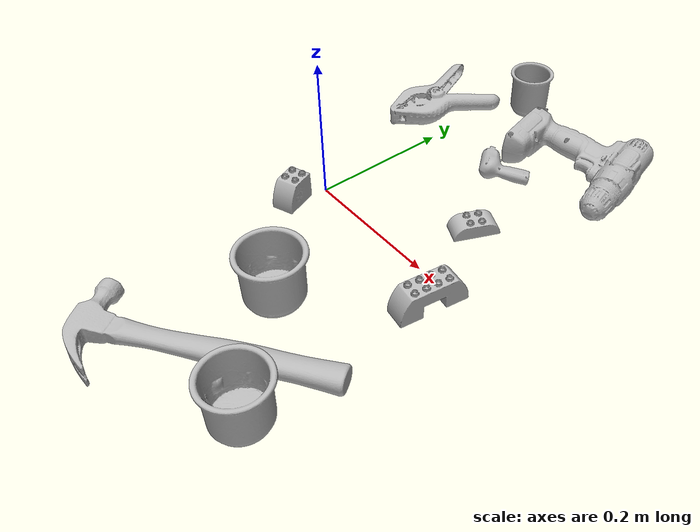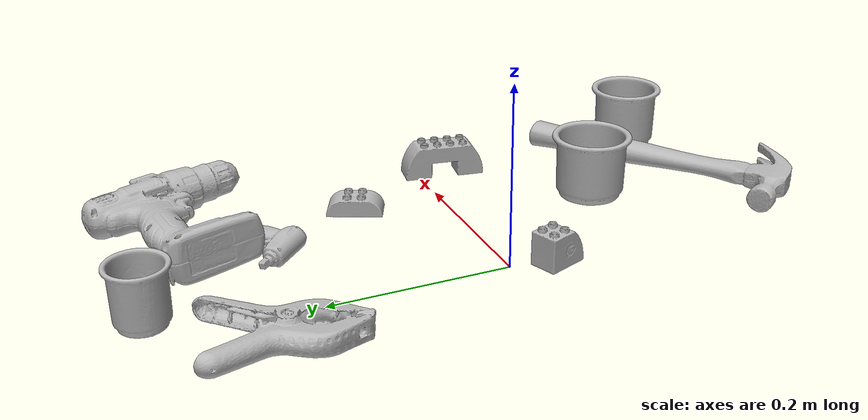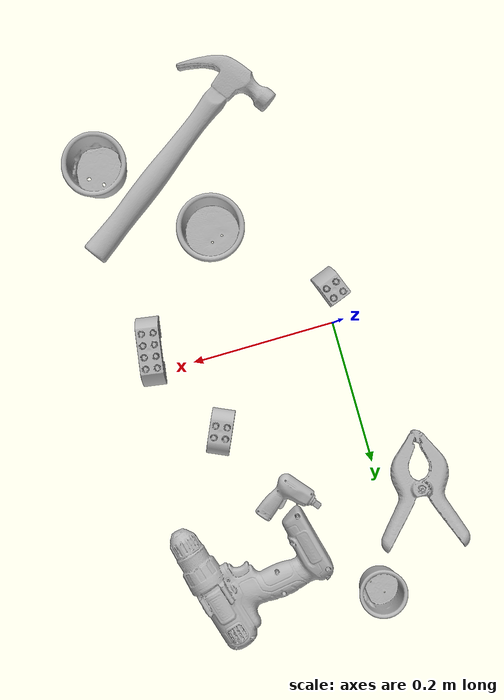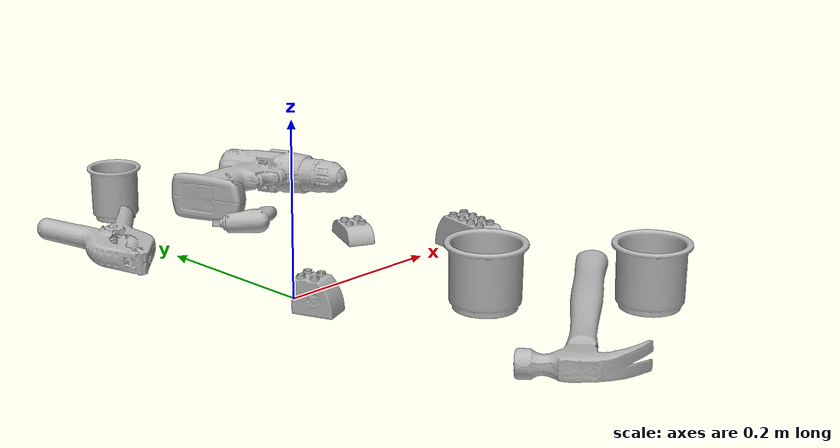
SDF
<sdf version="1.4">
  <world name="default">
    <light name="light1" type="point">
      <pose>0 0 1 0 0 0</pose>
      <diffuse>3 3 3 1</diffuse>
      <specular>3 3 3 1</specular>
    </light>
    <light name="light2" type="point">
      <pose>0 0.5 2 0 0 0</pose>
      <diffuse>1 1 1 1</diffuse>
      <specular>1 1 1 1</specular>
    </light>
    <light name="light3" type="point">
      <pose>0 0.5 2 0 0 0</pose>
      <diffuse>3 3 3 1</diffuse>
      <specular>3 3 3 1</specular>
    </light>
    <scene>
      <ambient>0.7 0.7 0.7</ambient>
    </scene>
    <model name="cup1">
      <link name="link_cup1">
        <collision name="default">
          <geometry>
            <mesh>
              <uri>model://g_cups/collision_meshes/collision.obj</uri>
              <scale>1.0 1.0 1.0</scale>
            </mesh>
          </geometry>
          <surface>
            <friction>
              <ode>
                <mu>0.5</mu>
                <mu2>0.5</mu2>
              </ode>
            </friction>
          <contact>
        <ode>
            <max_vel>0</max_vel>
            <min_depth>0.0001</min_depth>
            <kp>1e8</kp>
        </ode>
    </contact></surface>
        </collision>
        <visual name="default">
          <geometry>
            <mesh>
              <uri>model://g_cups/visual_meshes/visual.dae</uri>
              <scale>1.0 1.0 1.0</scale>
            </mesh>
          </geometry>
        </visual>
        <inertial>
          <mass>0.057625629007816315</mass>
          <pose>-0.0007946282275952399 -4.206500670989044e-05 -0.0021329375449568033 -0.21382697289054745 -0.3141031271963666 0.3112149002706268</pose>
          <inertia>
            <ixx>6.726202e-05</ixx>
            <iyy>6.7033216e-05</iyy>
            <izz>6.967186e-05</izz>
            <ixy>0</ixy>
            <ixz>0</ixz>
            <iyz>0</iyz>
          </inertia>
        </inertial>
      </link>
      <pose>0.251207560300827 -0.28950297832489014 0.037202946841716766 -4.177848536602637e-06 -3.5061021098737193e-05 2.3903385218371875</pose>
    </model>
    <model name="cup2">
      <link name="link_cup2">
        <collision name="default">
          <geometry>
            <mesh>
              <uri>model://c_cups/collision_meshes/collision.obj</uri>
              <scale>1.0 1.0 1.0</scale>
            </mesh>
          </geometry>
          <surface>
            <friction>
              <ode>
                <mu>0.5</mu>
                <mu2>0.5</mu2>
              </ode>
            </friction>
          <contact>
        <ode>
            <max_vel>0</max_vel>
            <min_depth>0.0001</min_depth>
            <kp>1e8</kp>
        </ode>
    </contact></surface>
        </collision>
        <visual name="default">
          <geometry>
            <mesh>
              <uri>model://c_cups/visual_meshes/visual.dae</uri>
              <scale>1.0 1.0 1.0</scale>
            </mesh>
          </geometry>
        </visual>
        <inertial>
          <mass>0.03477548435330391</mass>
          <pose>0.0007237261161208153 0.0020153902005404234 -0.0012750983005389571 0.30215732346046187 0.013461711857135551 -0.08771879968331305</pose>
          <inertia>
            <ixx>2.5862058e-05</ixx>
            <iyy>2.540504e-05</iyy>
            <izz>2.2871589e-05</izz>
            <ixy>0</ixy>
            <ixz>0</ixz>
            <iyz>0</iyz>
          </inertia>
        </inertial>
      </link>
      <pose>0.03809884190559387 0.36714187264442444 0.03345870599150658 7.68400319434381e-06 9.623430475637278e-06 -1.4910746635321357</pose>
    </model>
    <model name="cup3">
      <link name="link_cup3">
        <collision name="default">
          <geometry>
            <mesh>
              <uri>model://h_cups/collision_meshes/collision.obj</uri>
              <scale>1.0 1.0 1.0</scale>
            </mesh>
          </geometry>
          <surface>
            <friction>
              <ode>
                <mu>0.5</mu>
                <mu2>0.5</mu2>
              </ode>
            </friction>
          <contact>
        <ode>
            <max_vel>0</max_vel>
            <min_depth>0.0001</min_depth>
            <kp>1e8</kp>
        </ode>
    </contact></surface>
        </collision>
        <visual name="default">
          <geometry>
            <mesh>
              <uri>model://h_cups/visual_meshes/visual.dae</uri>
              <scale>1.0 1.0 1.0</scale>
            </mesh>
          </geometry>
        </visual>
        <inertial>
          <mass>0.050017159432172775</mass>
          <pose>-2.702731035242323e-05 0.0002301866770721972 -0.0018405388109385967 -0.024362003715272553 0.06545245272055236 0.12885201823743497</pose>
          <inertia>
            <ixx>6.459484e-05</ixx>
            <iyy>6.382401e-05</iyy>
            <izz>6.774227e-05</izz>
            <ixy>0</ixy>
            <ixz>0</ixz>
            <iyz>0</iyz>
          </inertia>
        </inertial>
      </link>
      <pose>0.12537412345409393 -0.16605649888515472 0.03775801509618759 -1.9020838873905425e-08 3.731041008386246e-08 -1.3006312731026173</pose>
    </model>
    <model name="toy1">
      <link name="link_toy1">
        <collision name="default">
          <geometry>
            <mesh>
              <uri>model://e_lego_duplo/collision_meshes/collision.obj</uri>
              <scale>1.0 1.0 1.0</scale>
            </mesh>
          </geometry>
          <surface>
            <friction>
              <ode>
                <mu>0.5</mu>
                <mu2>0.5</mu2>
              </ode>
            </friction>
          <contact>
        <ode>
            <max_vel>0</max_vel>
            <min_depth>0.0001</min_depth>
            <kp>1e8</kp>
        </ode>
    </contact></surface>
        </collision>
        <visual name="default">
          <geometry>
            <mesh>
              <uri>model://e_lego_duplo/visual_meshes/visual.dae</uri>
              <scale>1.0 1.0 1.0</scale>
            </mesh>
          </geometry>
        </visual>
        <inertial>
          <mass>0.09100330621004105</mass>
          <pose>0.0003256048948969692 0.00023485418932978064 0.0019521461799740791 -0.02256778535698338 -6.825395529084007e-05 -0.0076251622764869605</pose>
          <inertia>
            <ixx>1.897719e-05</ixx>
            <iyy>7.788726e-05</iyy>
            <izz>7.584653e-05</izz>
            <ixy>0</ixy>
            <ixz>0</ixz>
            <iyz>0</iyz>
          </inertia>
        </inertial>
      </link>
      <pose>0.2521771192550659 -0.03138403594493866 0.021808993071317673 9.510947705945546e-07 -4.272283320270933e-07 1.4214744698633952</pose>
    </model>
    <model name="toy2">
      <link name="link_toy2">
        <collision name="default">
          <geometry>
            <mesh>
              <uri>model://b_toy_airplane/collision_meshes/collision.obj</uri>
              <scale>0.5 0.5 0.5</scale>
            </mesh>
          </geometry>
          <surface>
            <friction>
              <ode>
                <mu>0.5</mu>
                <mu2>0.5</mu2>
              </ode>
            </friction>
          <contact>
        <ode>
            <max_vel>0</max_vel>
            <min_depth>0.0001</min_depth>
            <kp>1e8</kp>
        </ode>
    </contact></surface>
        </collision>
        <visual name="default">
          <geometry>
            <mesh>
              <uri>model://b_toy_airplane/visual_meshes/visual.dae</uri>
              <scale>0.5 0.5 0.5</scale>
            </mesh>
          </geometry>
        </visual>
        <inertial>
          <mass>0.06363805383443832</mass>
          <pose>0.002540681976824999 0.0020077931694686413 0.004771532956510782 -0.0400181041712346 -0.04022185546555606 -0.5601502891427816</pose>
          <inertia>
            <ixx>2.9536302e-05</ixx>
            <iyy>1.1805946e-05</iyy>
            <izz>3.6746103e-05</izz>
            <ixy>0</ixy>
            <ixz>0</ixz>
            <iyz>0</iyz>
          </inertia>
        </inertial>
      </link>
      <pose>0.12783759832382202 0.20982150733470917 0.008488939143717289 0.18487642604885532 0.11349909594739596 2.261111742115698</pose>
    </model>
    <model name="toy3">
      <link name="link_toy3">
        <collision name="default">
          <geometry>
            <mesh>
              <uri>model://d_lego_duplo/collision_meshes/collision.obj</uri>
              <scale>1.0 1.0 1.0</scale>
            </mesh>
          </geometry>
          <surface>
            <friction>
              <ode>
                <mu>0.5</mu>
                <mu2>0.5</mu2>
              </ode>
            </friction>
          <contact>
        <ode>
            <max_vel>0</max_vel>
            <min_depth>0.0001</min_depth>
            <kp>1e8</kp>
        </ode>
    </contact></surface>
        </collision>
        <visual name="default">
          <geometry>
            <mesh>
              <uri>model://d_lego_duplo/visual_meshes/visual.dae</uri>
              <scale>1.0 1.0 1.0</scale>
            </mesh>
          </geometry>
        </visual>
        <inertial>
          <mass>0.05334000289440155</mass>
          <pose>0.002830563811585307 0.0001636617089388892 0.0008589810458943248 0.0801090676593232 -0.3835525121717052 0.0010296416750687279</pose>
          <inertia>
            <ixx>1.0325837e-05</ixx>
            <iyy>1.4655165e-05</iyy>
            <izz>1.4132847e-05</izz>
            <ixy>0</ixy>
            <ixz>0</ixz>
            <iyz>0</iyz>
          </inertia>
        </inertial>
      </link>
      <pose>-0.010279974900186062 -0.04942415654659271 0.021739989519119263 5.508485948243126e-05 3.076126443685355e-05 1.9337742581738624</pose>
    </model>
    <model name="toy4">
      <link name="link_toy4">
        <collision name="default">
          <geometry>
            <mesh>
              <uri>model://a_lego_duplo/collision_meshes/collision.obj</uri>
              <scale>1.0 1.0 1.0</scale>
            </mesh>
          </geometry>
          <surface>
            <friction>
              <ode>
                <mu>0.5</mu>
                <mu2>0.5</mu2>
              </ode>
            </friction>
          <contact>
        <ode>
            <max_vel>0</max_vel>
            <min_depth>0.0001</min_depth>
            <kp>1e8</kp>
        </ode>
    </contact></surface>
        </collision>
        <visual name="default">
          <geometry>
            <mesh>
              <uri>model://a_lego_duplo/visual_meshes/visual.dae</uri>
              <scale>1.0 1.0 1.0</scale>
            </mesh>
          </geometry>
        </visual>
        <inertial>
          <mass>0.02371947281062603</mass>
          <pose>-0.00011337659088894725 0.00018517536227591336 0.00036926098982803524 -0.014117032318495473 -0.00012566219654468525 6.139472672246545e-05</pose>
          <inertia>
            <ixx>3.0410272e-06</ixx>
            <iyy>6.8125664e-06</iyy>
            <izz>8.438875e-06</izz>
            <ixy>0</ixy>
            <ixz>0</ixz>
            <iyz>0</iyz>
          </inertia>
        </inertial>
      </link>
      <pose>0.19033867120742798 0.1023937463760376 0.012111575342714787 1.8422840855885823e-05 -1.4590098182728745e-05 -1.9937678180780187</pose>
    </model>
    <model name="hardware1">
      <link name="link_hardware1">
        <collision name="default">
          <geometry>
            <mesh>
              <uri>model://hammer/collision_meshes/collision.obj</uri>
              <scale>1.0 1.0 1.0</scale>
            </mesh>
          </geometry>
          <surface>
            <friction>
              <ode>
                <mu>0.5</mu>
                <mu2>0.5</mu2>
              </ode>
            </friction>
          <contact>
        <ode>
            <max_vel>0</max_vel>
            <min_depth>0.0001</min_depth>
            <kp>1e8</kp>
        </ode>
    </contact></surface>
        </collision>
        <visual name="default">
          <geometry>
            <mesh>
              <uri>model://hammer/visual_meshes/visual.dae</uri>
              <scale>1.0 1.0 1.0</scale>
            </mesh>
          </geometry>
        </visual>
        <inertial>
          <mass>0.21542595326900482</mass>
          <pose>0.009415775537490845 -0.011892358772456646 -0.00012350629549473524 0.02315578421630864 -0.004792165572519315 -0.012760317567756519</pose>
          <inertia>
            <ixx>9.2278024e-05</ixx>
            <iyy>0.0025004656</iyy>
            <izz>0.002572105</izz>
            <ixy>0</ixy>
            <ixz>0</ixz>
            <iyz>0</iyz>
          </inertia>
        </inertial>
      </link>
      <pose>0.15334942936897278 -0.29283350706100464 0.01626737229526043 -0.00519906907807813 -0.0013802269074331987 -2.5133052308707877</pose>
    </model>
    <model name="hardware2">
      <link name="link_hardware2">
        <collision name="default">
          <geometry>
            <mesh>
              <uri>model://large_clamp/collision_meshes/collision.obj</uri>
              <scale>1.0 1.0 1.0</scale>
            </mesh>
          </geometry>
          <surface>
            <friction>
              <ode>
                <mu>0.5</mu>
                <mu2>0.5</mu2>
              </ode>
            </friction>
          <contact>
        <ode>
            <max_vel>0</max_vel>
            <min_depth>0.0001</min_depth>
            <kp>1e8</kp>
        </ode>
    </contact></surface>
        </collision>
        <visual name="default">
          <geometry>
            <mesh>
              <uri>model://large_clamp/visual_meshes/visual.dae</uri>
              <scale>1.0 1.0 1.0</scale>
            </mesh>
          </geometry>
        </visual>
        <inertial>
          <mass>0.16898278892040253</mass>
          <pose>0.006369357462972403 0.00035856629256159067 -0.00018398034444544464 -0.002133075920149734 0.009671594117503977 0.026633212091596442</pose>
          <inertia>
            <ixx>0.00014908903</ixx>
            <iyy>0.00028312797</iyy>
            <izz>0.00040958088</izz>
            <ixy>0</ixy>
            <ixz>0</ixz>
            <iyz>0</iyz>
          </inertia>
        </inertial>
      </link>
      <pose>-0.053076427429914474 0.25331735610961914 0.01850423961877823 -0.012280203525561726 0.046924879798666316 -1.7856889235585063</pose>
    </model>
    <model name="hardware3">
      <link name="link_hardware3">
        <collision name="default">
          <geometry>
            <mesh>
              <uri>model://power_drill/collision_meshes/collision.obj</uri>
              <scale>1.0 1.0 1.0</scale>
            </mesh>
          </geometry>
          <surface>
            <friction>
              <ode>
                <mu>0.5</mu>
                <mu2>0.5</mu2>
              </ode>
            </friction>
          <contact>
        <ode>
            <max_vel>0</max_vel>
            <min_depth>0.0001</min_depth>
            <kp>1e8</kp>
        </ode>
    </contact></surface>
        </collision>
        <visual name="default">
          <geometry>
            <mesh>
              <uri>model://power_drill/visual_meshes/visual.dae</uri>
              <scale>1.0 1.0 1.0</scale>
            </mesh>
          </geometry>
        </visual>
        <inertial>
          <mass>0.7224003672599792</mass>
          <pose>-0.014780545607209206 0.014369428157806396 0.0012414171360433102 0.0046091635101465946 0.00407302394444766 -0.18362692290061644</pose>
          <inertia>
            <ixx>0.002943816</ixx>
            <iyy>0.0011582379</iyy>
            <izz>0.0038878287</izz>
            <ixy>0</ixy>
            <ixz>0</ixz>
            <iyz>0</iyz>
          </inertia>
        </inertial>
      </link>
      <pose>0.19546331465244293 0.2855294942855835 0.027312451973557472 -0.030306025894981353 -0.04725290229101018 -1.304354149757391</pose>
    </model>
  <physics type="ode">
      <max_contacts>50</max_contacts>
      <ode>
        <solver>
          <type>quick</type>
          <iters>75</iters>
        </solver>
        <constraints>
          <contact_max_correcting_vel>0</contact_max_correcting_vel>
          <contact_surface_layer>0</contact_surface_layer>
        </constraints>
      </ode>
    </physics></world>
</sdf>
